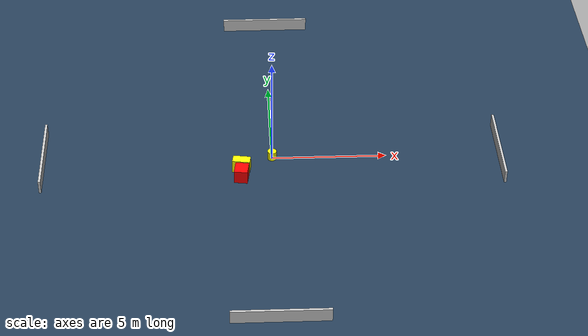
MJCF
<?xml version="1.0" ?>
<mujoco model="generated_environment">
  <option timestep="0.01" integrator="RK4" cone="elliptic"/>
  <default>
    <geom density="1"/>
  </default>
  <asset>
    <texture builtin="gradient" height="3072" name="skybox" rgb1="0.3 0.5 0.7" rgb2="0 0 0" type="skybox" width="512"/>
    <texture builtin="checker" height="300" name="groundplane" rgb1="0.2 0.3 0.4" rgb2="0.1 0.2 0.3" type="2d" width="300"/>
    <material name="groundplane" reflectance="0.2" texrepeat="5 5" texture="groundplane"/>
  </asset>
  <worldbody>
    <light dir="0 0 -1" directional="true" pos="0 0 1.5"/>
    <geom condim="3" friction="0.5 0.005 0.001" material="groundplane" name="floor" pos="0 0 0" size="0 0 0.05" type="plane"/>
    <body name="walls">
      <geom name="wall_1" condim="4" pos="-10.0 0.0 0.3" rgba="0.800000011920929 0.800000011920929 0.800000011920929 1.0" size="0.05 2.0 0.3" type="box"/>
      <geom name="wall_2" condim="4" pos="10.0 0.0 0.3" rgba="0.800000011920929 0.800000011920929 0.800000011920929 1.0" size="0.05 2.0 0.3" type="box"/>
      <geom name="wall_3" condim="4" pos="0.0 -10.0 0.3" rgba="0.800000011920929 0.800000011920929 0.800000011920929 1.0" size="2.0 0.05 0.3" type="box"/>
      <geom name="wall_4" condim="4" pos="0.0 10.0 0.3" rgba="0.800000011920929 0.800000011920929 0.800000011920929 1.0" size="2.0 0.05 0.3" type="box"/>
    </body>
    <body name="robot">
      <joint name="joint_x" type="slide" pos="0 0 0" axis="1 0 0"/>
      <joint name="joint_y" type="slide" pos="0 0 0" axis="0 1 0"/>
      <geom name="robot" type="cylinder" pos="0.0 0.0 0.2" size="0.2 0.2 0.0" mass="5.0" friction="1.0 0.005 0.0001" condim="4" rgba="1.0 1.0 0.0 1.0"/>
    </body>
    <body name="obstacle_1_movable">
      <geom name="obstacle_1_movable" condim="4" pos="-1.3491800630829214 -0.7388941370539872 0.3" euler="0 0 261.27436069791196" friction="0.0 0.005 0.001" rgba="1.0 1.0 0.0 1.0" size="0.2028811534392524 0.38229771189499273 0.3" type="box" mass="0.1"/>
      <joint type="free"/>
    </body>
    <body name="obstacle_2_static">
      <geom name="obstacle_2_static" condim="4" pos="-1.3599534899478147 -1.3264801122908965 0.3" euler="0 0 262.31213501264426" friction="0.0 0.005 0.001" rgba="1.0 0.0 0.0 1.0" size="0.32300712510367935 0.2919154563507571 0.3" type="box"/>
    </body>
  </worldbody>
  <actuator>
    <motor name="actuator_x" joint="joint_x" gear="1" ctrlrange="-1 1"/>
    <motor name="actuator_y" joint="joint_y" gear="1" ctrlrange="-1 1"/>
  </actuator>
</mujoco>
